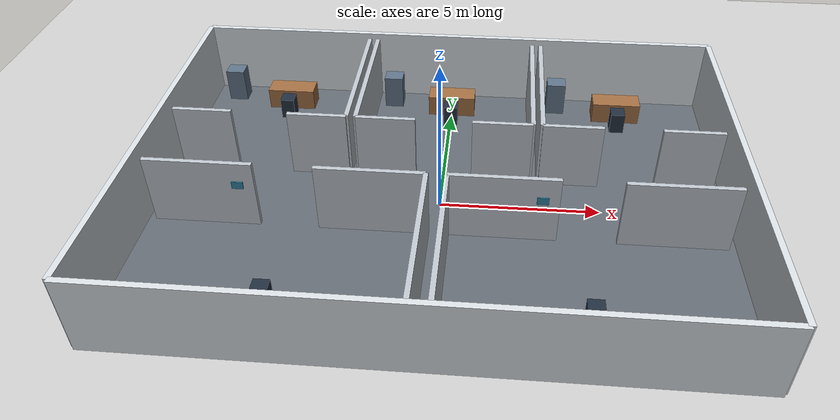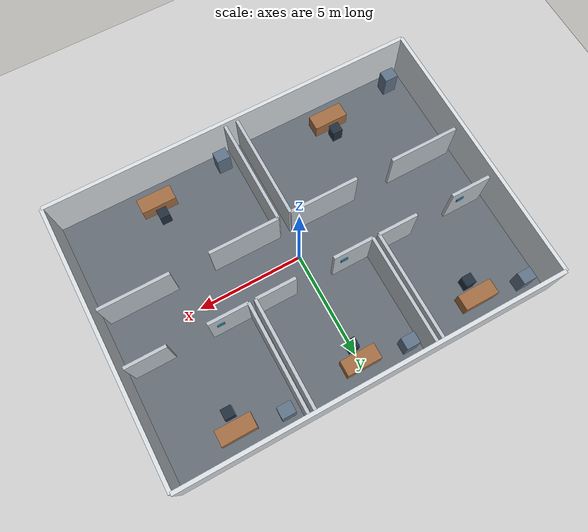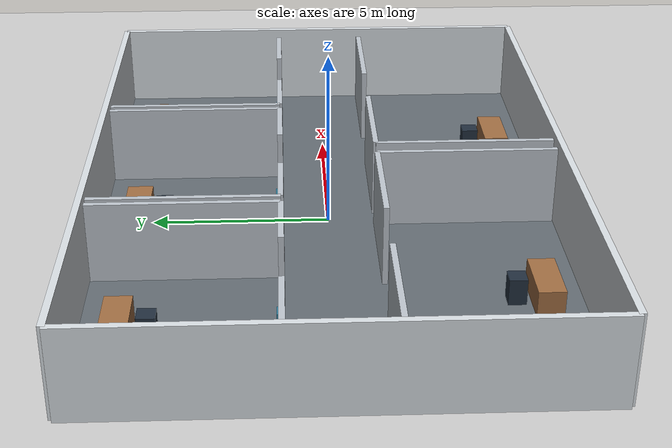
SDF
<?xml version='1.0' encoding='utf-8'?>
<sdf version="1.6">
  <world name="robotics_office_rooms">
    <include>
      <uri>model://sun</uri>
    </include>
    <include>
      <uri>model://ground_plane</uri>
    </include>
    <scene>
      <ambient>0.7 0.7 0.7 1</ambient>
      <background>0.77 0.81 0.88 1</background>
      <shadows>false</shadows>
    </scene>
    <physics name="default_physics" type="ode">
      <max_step_size>0.001</max_step_size>
      <real_time_update_rate>1000</real_time_update_rate>
    </physics>
    <model name="charcoal_gray_floor">
      <static>true</static>
      <pose>0 0 0.015 0 0 0</pose>
      <link name="link">
        <collision name="collision">
          <geometry>
            <box>
              <size>18 13 0.03</size>
            </box>
          </geometry>
        </collision>
        <visual name="visual">
          <geometry>
            <box>
              <size>18 13 0.03</size>
            </box>
          </geometry>
          <material>
            <ambient>0.39 0.42 0.45 1</ambient>
            <diffuse>0.39 0.42 0.45 1</diffuse>
          </material>
        </visual>
      </link>
    </model>
    <model name="outer_north">
      <static>true</static>
      <pose>0 6.5 1.25 0 0 0</pose>
      <link name="link">
        <collision name="collision">
          <geometry>
            <box>
              <size>18 0.18 2.5</size>
            </box>
          </geometry>
        </collision>
        <visual name="visual">
          <geometry>
            <box>
              <size>18 0.18 2.5</size>
            </box>
          </geometry>
          <material>
            <ambient>0.85 0.87 0.89 1</ambient>
            <diffuse>0.85 0.87 0.89 1</diffuse>
          </material>
        </visual>
      </link>
    </model>
    <model name="outer_south">
      <static>true</static>
      <pose>0 -6.5 1.25 0 0 0</pose>
      <link name="link">
        <collision name="collision">
          <geometry>
            <box>
              <size>18 0.18 2.5</size>
            </box>
          </geometry>
        </collision>
        <visual name="visual">
          <geometry>
            <box>
              <size>18 0.18 2.5</size>
            </box>
          </geometry>
          <material>
            <ambient>0.85 0.87 0.89 1</ambient>
            <diffuse>0.85 0.87 0.89 1</diffuse>
          </material>
        </visual>
      </link>
    </model>
    <model name="outer_west">
      <static>true</static>
      <pose>-9 0 1.25 0 0 0</pose>
      <link name="link">
        <collision name="collision">
          <geometry>
            <box>
              <size>0.18 13 2.5</size>
            </box>
          </geometry>
        </collision>
        <visual name="visual">
          <geometry>
            <box>
              <size>0.18 13 2.5</size>
            </box>
          </geometry>
          <material>
            <ambient>0.85 0.87 0.89 1</ambient>
            <diffuse>0.85 0.87 0.89 1</diffuse>
          </material>
        </visual>
      </link>
    </model>
    <model name="outer_east">
      <static>true</static>
      <pose>9 0 1.25 0 0 0</pose>
      <link name="link">
        <collision name="collision">
          <geometry>
            <box>
              <size>0.18 13 2.5</size>
            </box>
          </geometry>
        </collision>
        <visual name="visual">
          <geometry>
            <box>
              <size>0.18 13 2.5</size>
            </box>
          </geometry>
          <material>
            <ambient>0.85 0.87 0.89 1</ambient>
            <diffuse>0.85 0.87 0.89 1</diffuse>
          </material>
        </visual>
      </link>
    </model>
    <model name="room1_front_L">
      <static>true</static>
      <pose>-7.75 1.35 1.15 0 0 0</pose>
      <link name="link">
        <collision name="collision">
          <geometry>
            <box>
              <size>1.8999999999999995 0.15 2.3</size>
            </box>
          </geometry>
        </collision>
        <visual name="visual">
          <geometry>
            <box>
              <size>1.8999999999999995 0.15 2.3</size>
            </box>
          </geometry>
          <material>
            <ambient>0.74 0.77 0.80 1</ambient>
            <diffuse>0.74 0.77 0.80 1</diffuse>
          </material>
        </visual>
      </link>
    </model>
    <model name="room1_front_R">
      <static>true</static>
      <pose>-4.05 1.35 1.15 0 0 0</pose>
      <link name="link">
        <collision name="collision">
          <geometry>
            <box>
              <size>1.899999999999999 0.15 2.3</size>
            </box>
          </geometry>
        </collision>
        <visual name="visual">
          <geometry>
            <box>
              <size>1.899999999999999 0.15 2.3</size>
            </box>
          </geometry>
          <material>
            <ambient>0.74 0.77 0.80 1</ambient>
            <diffuse>0.74 0.77 0.80 1</diffuse>
          </material>
        </visual>
      </link>
    </model>
    <model name="room1_right">
      <static>true</static>
      <pose>-3.1 3.875 1.15 0 0 0</pose>
      <link name="link">
        <collision name="collision">
          <geometry>
            <box>
              <size>0.15 5.050000000000001 2.3</size>
            </box>
          </geometry>
        </collision>
        <visual name="visual">
          <geometry>
            <box>
              <size>0.15 5.050000000000001 2.3</size>
            </box>
          </geometry>
          <material>
            <ambient>0.74 0.77 0.80 1</ambient>
            <diffuse>0.74 0.77 0.80 1</diffuse>
          </material>
        </visual>
      </link>
    </model>
    <model name="room1_desk">
      <static>true</static>
      <pose>-5.8999999999999995 5.4 0.38 0 0 0</pose>
      <link name="link">
        <collision name="collision">
          <geometry>
            <box>
              <size>1.65 0.72 0.76</size>
            </box>
          </geometry>
        </collision>
        <visual name="visual">
          <geometry>
            <box>
              <size>1.65 0.72 0.76</size>
            </box>
          </geometry>
          <material>
            <ambient>0.63 0.43 0.26 1</ambient>
            <diffuse>0.63 0.43 0.26 1</diffuse>
          </material>
        </visual>
      </link>
    </model>
    <model name="room1_chair">
      <static>true</static>
      <pose>-5.8999999999999995 4.65 0.38 0 0 0</pose>
      <link name="link">
        <collision name="collision">
          <geometry>
            <box>
              <size>0.48 0.48 0.76</size>
            </box>
          </geometry>
        </collision>
        <visual name="visual">
          <geometry>
            <box>
              <size>0.48 0.48 0.76</size>
            </box>
          </geometry>
          <material>
            <ambient>0.13 0.18 0.24 1</ambient>
            <diffuse>0.13 0.18 0.24 1</diffuse>
          </material>
        </visual>
      </link>
    </model>
    <model name="room1_cabinet">
      <static>true</static>
      <pose>-8.049999999999999 5.75 0.6 0 0 0</pose>
      <link name="link">
        <collision name="collision">
          <geometry>
            <box>
              <size>0.65 0.55 1.2</size>
            </box>
          </geometry>
        </collision>
        <visual name="visual">
          <geometry>
            <box>
              <size>0.65 0.55 1.2</size>
            </box>
          </geometry>
          <material>
            <ambient>0.37 0.45 0.53 1</ambient>
            <diffuse>0.37 0.45 0.53 1</diffuse>
          </material>
        </visual>
      </link>
    </model>
    <model name="room1_sign">
      <static>true</static>
      <pose>-7.299999999999999 1.4500000000000002 1.55 0 0 0</pose>
      <link name="link">
        <collision name="collision">
          <geometry>
            <box>
              <size>0.35 0.04 0.25</size>
            </box>
          </geometry>
        </collision>
        <visual name="visual">
          <geometry>
            <box>
              <size>0.35 0.04 0.25</size>
            </box>
          </geometry>
          <material>
            <ambient>0.18 0.50 0.62 1</ambient>
            <diffuse>0.18 0.50 0.62 1</diffuse>
          </material>
        </visual>
      </link>
    </model>
    <model name="room2_front_L">
      <static>true</static>
      <pose>-1.8499999999999999 1.35 1.15 0 0 0</pose>
      <link name="link">
        <collision name="collision">
          <geometry>
            <box>
              <size>1.9 0.15 2.3</size>
            </box>
          </geometry>
        </collision>
        <visual name="visual">
          <geometry>
            <box>
              <size>1.9 0.15 2.3</size>
            </box>
          </geometry>
          <material>
            <ambient>0.74 0.77 0.80 1</ambient>
            <diffuse>0.74 0.77 0.80 1</diffuse>
          </material>
        </visual>
      </link>
    </model>
    <model name="room2_front_R">
      <static>true</static>
      <pose>1.8499999999999999 1.35 1.15 0 0 0</pose>
      <link name="link">
        <collision name="collision">
          <geometry>
            <box>
              <size>1.9 0.15 2.3</size>
            </box>
          </geometry>
        </collision>
        <visual name="visual">
          <geometry>
            <box>
              <size>1.9 0.15 2.3</size>
            </box>
          </geometry>
          <material>
            <ambient>0.74 0.77 0.80 1</ambient>
            <diffuse>0.74 0.77 0.80 1</diffuse>
          </material>
        </visual>
      </link>
    </model>
    <model name="room2_left">
      <static>true</static>
      <pose>-2.8 3.875 1.15 0 0 0</pose>
      <link name="link">
        <collision name="collision">
          <geometry>
            <box>
              <size>0.15 5.050000000000001 2.3</size>
            </box>
          </geometry>
        </collision>
        <visual name="visual">
          <geometry>
            <box>
              <size>0.15 5.050000000000001 2.3</size>
            </box>
          </geometry>
          <material>
            <ambient>0.74 0.77 0.80 1</ambient>
            <diffuse>0.74 0.77 0.80 1</diffuse>
          </material>
        </visual>
      </link>
    </model>
    <model name="room2_right">
      <static>true</static>
      <pose>2.8 3.875 1.15 0 0 0</pose>
      <link name="link">
        <collision name="collision">
          <geometry>
            <box>
              <size>0.15 5.050000000000001 2.3</size>
            </box>
          </geometry>
        </collision>
        <visual name="visual">
          <geometry>
            <box>
              <size>0.15 5.050000000000001 2.3</size>
            </box>
          </geometry>
          <material>
            <ambient>0.74 0.77 0.80 1</ambient>
            <diffuse>0.74 0.77 0.80 1</diffuse>
          </material>
        </visual>
      </link>
    </model>
    <model name="room2_desk">
      <static>true</static>
      <pose>0.0 5.4 0.38 0 0 0</pose>
      <link name="link">
        <collision name="collision">
          <geometry>
            <box>
              <size>1.65 0.72 0.76</size>
            </box>
          </geometry>
        </collision>
        <visual name="visual">
          <geometry>
            <box>
              <size>1.65 0.72 0.76</size>
            </box>
          </geometry>
          <material>
            <ambient>0.63 0.43 0.26 1</ambient>
            <diffuse>0.63 0.43 0.26 1</diffuse>
          </material>
        </visual>
      </link>
    </model>
    <model name="room2_chair">
      <static>true</static>
      <pose>0.0 4.65 0.38 0 0 0</pose>
      <link name="link">
        <collision name="collision">
          <geometry>
            <box>
              <size>0.48 0.48 0.76</size>
            </box>
          </geometry>
        </collision>
        <visual name="visual">
          <geometry>
            <box>
              <size>0.48 0.48 0.76</size>
            </box>
          </geometry>
          <material>
            <ambient>0.13 0.18 0.24 1</ambient>
            <diffuse>0.13 0.18 0.24 1</diffuse>
          </material>
        </visual>
      </link>
    </model>
    <model name="room2_cabinet">
      <static>true</static>
      <pose>-2.15 5.75 0.6 0 0 0</pose>
      <link name="link">
        <collision name="collision">
          <geometry>
            <box>
              <size>0.65 0.55 1.2</size>
            </box>
          </geometry>
        </collision>
        <visual name="visual">
          <geometry>
            <box>
              <size>0.65 0.55 1.2</size>
            </box>
          </geometry>
          <material>
            <ambient>0.37 0.45 0.53 1</ambient>
            <diffuse>0.37 0.45 0.53 1</diffuse>
          </material>
        </visual>
      </link>
    </model>
    <model name="room2_sign">
      <static>true</static>
      <pose>-1.4 1.4500000000000002 1.55 0 0 0</pose>
      <link name="link">
        <collision name="collision">
          <geometry>
            <box>
              <size>0.35 0.04 0.25</size>
            </box>
          </geometry>
        </collision>
        <visual name="visual">
          <geometry>
            <box>
              <size>0.35 0.04 0.25</size>
            </box>
          </geometry>
          <material>
            <ambient>0.18 0.50 0.62 1</ambient>
            <diffuse>0.18 0.50 0.62 1</diffuse>
          </material>
        </visual>
      </link>
    </model>
    <model name="room3_front_L">
      <static>true</static>
      <pose>4.05 1.35 1.15 0 0 0</pose>
      <link name="link">
        <collision name="collision">
          <geometry>
            <box>
              <size>1.899999999999999 0.15 2.3</size>
            </box>
          </geometry>
        </collision>
        <visual name="visual">
          <geometry>
            <box>
              <size>1.899999999999999 0.15 2.3</size>
            </box>
          </geometry>
          <material>
            <ambient>0.74 0.77 0.80 1</ambient>
            <diffuse>0.74 0.77 0.80 1</diffuse>
          </material>
        </visual>
      </link>
    </model>
    <model name="room3_front_R">
      <static>true</static>
      <pose>7.75 1.35 1.15 0 0 0</pose>
      <link name="link">
        <collision name="collision">
          <geometry>
            <box>
              <size>1.8999999999999995 0.15 2.3</size>
            </box>
          </geometry>
        </collision>
        <visual name="visual">
          <geometry>
            <box>
              <size>1.8999999999999995 0.15 2.3</size>
            </box>
          </geometry>
          <material>
            <ambient>0.74 0.77 0.80 1</ambient>
            <diffuse>0.74 0.77 0.80 1</diffuse>
          </material>
        </visual>
      </link>
    </model>
    <model name="room3_left">
      <static>true</static>
      <pose>3.1 3.875 1.15 0 0 0</pose>
      <link name="link">
        <collision name="collision">
          <geometry>
            <box>
              <size>0.15 5.050000000000001 2.3</size>
            </box>
          </geometry>
        </collision>
        <visual name="visual">
          <geometry>
            <box>
              <size>0.15 5.050000000000001 2.3</size>
            </box>
          </geometry>
          <material>
            <ambient>0.74 0.77 0.80 1</ambient>
            <diffuse>0.74 0.77 0.80 1</diffuse>
          </material>
        </visual>
      </link>
    </model>
    <model name="room3_desk">
      <static>true</static>
      <pose>5.8999999999999995 5.4 0.38 0 0 0</pose>
      <link name="link">
        <collision name="collision">
          <geometry>
            <box>
              <size>1.65 0.72 0.76</size>
            </box>
          </geometry>
        </collision>
        <visual name="visual">
          <geometry>
            <box>
              <size>1.65 0.72 0.76</size>
            </box>
          </geometry>
          <material>
            <ambient>0.63 0.43 0.26 1</ambient>
            <diffuse>0.63 0.43 0.26 1</diffuse>
          </material>
        </visual>
      </link>
    </model>
    <model name="room3_chair">
      <static>true</static>
      <pose>5.8999999999999995 4.65 0.38 0 0 0</pose>
      <link name="link">
        <collision name="collision">
          <geometry>
            <box>
              <size>0.48 0.48 0.76</size>
            </box>
          </geometry>
        </collision>
        <visual name="visual">
          <geometry>
            <box>
              <size>0.48 0.48 0.76</size>
            </box>
          </geometry>
          <material>
            <ambient>0.13 0.18 0.24 1</ambient>
            <diffuse>0.13 0.18 0.24 1</diffuse>
          </material>
        </visual>
      </link>
    </model>
    <model name="room3_cabinet">
      <static>true</static>
      <pose>3.75 5.75 0.6 0 0 0</pose>
      <link name="link">
        <collision name="collision">
          <geometry>
            <box>
              <size>0.65 0.55 1.2</size>
            </box>
          </geometry>
        </collision>
        <visual name="visual">
          <geometry>
            <box>
              <size>0.65 0.55 1.2</size>
            </box>
          </geometry>
          <material>
            <ambient>0.37 0.45 0.53 1</ambient>
            <diffuse>0.37 0.45 0.53 1</diffuse>
          </material>
        </visual>
      </link>
    </model>
    <model name="room3_sign">
      <static>true</static>
      <pose>4.5 1.4500000000000002 1.55 0 0 0</pose>
      <link name="link">
        <collision name="collision">
          <geometry>
            <box>
              <size>0.35 0.04 0.25</size>
            </box>
          </geometry>
        </collision>
        <visual name="visual">
          <geometry>
            <box>
              <size>0.35 0.04 0.25</size>
            </box>
          </geometry>
          <material>
            <ambient>0.18 0.50 0.62 1</ambient>
            <diffuse>0.18 0.50 0.62 1</diffuse>
          </material>
        </visual>
      </link>
    </model>
    <model name="room4_front_L">
      <static>true</static>
      <pose>-7.05 -1.35 1.15 0 0 0</pose>
      <link name="link">
        <collision name="collision">
          <geometry>
            <box>
              <size>3.299999999999999 0.15 2.3</size>
            </box>
          </geometry>
        </collision>
        <visual name="visual">
          <geometry>
            <box>
              <size>3.299999999999999 0.15 2.3</size>
            </box>
          </geometry>
          <material>
            <ambient>0.74 0.77 0.80 1</ambient>
            <diffuse>0.74 0.77 0.80 1</diffuse>
          </material>
        </visual>
      </link>
    </model>
    <model name="room4_front_R">
      <static>true</static>
      <pose>-1.95 -1.35 1.15 0 0 0</pose>
      <link name="link">
        <collision name="collision">
          <geometry>
            <box>
              <size>3.3000000000000003 0.15 2.3</size>
            </box>
          </geometry>
        </collision>
        <visual name="visual">
          <geometry>
            <box>
              <size>3.3000000000000003 0.15 2.3</size>
            </box>
          </geometry>
          <material>
            <ambient>0.74 0.77 0.80 1</ambient>
            <diffuse>0.74 0.77 0.80 1</diffuse>
          </material>
        </visual>
      </link>
    </model>
    <model name="room4_right">
      <static>true</static>
      <pose>-0.3 -3.875 1.15 0 0 0</pose>
      <link name="link">
        <collision name="collision">
          <geometry>
            <box>
              <size>0.15 5.050000000000001 2.3</size>
            </box>
          </geometry>
        </collision>
        <visual name="visual">
          <geometry>
            <box>
              <size>0.15 5.050000000000001 2.3</size>
            </box>
          </geometry>
          <material>
            <ambient>0.74 0.77 0.80 1</ambient>
            <diffuse>0.74 0.77 0.80 1</diffuse>
          </material>
        </visual>
      </link>
    </model>
    <model name="room4_desk">
      <static>true</static>
      <pose>-4.5 -5.4 0.38 0 0 0</pose>
      <link name="link">
        <collision name="collision">
          <geometry>
            <box>
              <size>1.65 0.72 0.76</size>
            </box>
          </geometry>
        </collision>
        <visual name="visual">
          <geometry>
            <box>
              <size>1.65 0.72 0.76</size>
            </box>
          </geometry>
          <material>
            <ambient>0.63 0.43 0.26 1</ambient>
            <diffuse>0.63 0.43 0.26 1</diffuse>
          </material>
        </visual>
      </link>
    </model>
    <model name="room4_chair">
      <static>true</static>
      <pose>-4.5 -4.65 0.38 0 0 0</pose>
      <link name="link">
        <collision name="collision">
          <geometry>
            <box>
              <size>0.48 0.48 0.76</size>
            </box>
          </geometry>
        </collision>
        <visual name="visual">
          <geometry>
            <box>
              <size>0.48 0.48 0.76</size>
            </box>
          </geometry>
          <material>
            <ambient>0.13 0.18 0.24 1</ambient>
            <diffuse>0.13 0.18 0.24 1</diffuse>
          </material>
        </visual>
      </link>
    </model>
    <model name="room4_cabinet">
      <static>true</static>
      <pose>-8.049999999999999 -5.75 0.6 0 0 0</pose>
      <link name="link">
        <collision name="collision">
          <geometry>
            <box>
              <size>0.65 0.55 1.2</size>
            </box>
          </geometry>
        </collision>
        <visual name="visual">
          <geometry>
            <box>
              <size>0.65 0.55 1.2</size>
            </box>
          </geometry>
          <material>
            <ambient>0.37 0.45 0.53 1</ambient>
            <diffuse>0.37 0.45 0.53 1</diffuse>
          </material>
        </visual>
      </link>
    </model>
    <model name="room4_sign">
      <static>true</static>
      <pose>-5.9 -1.4500000000000002 1.55 0 0 0</pose>
      <link name="link">
        <collision name="collision">
          <geometry>
            <box>
              <size>0.35 0.04 0.25</size>
            </box>
          </geometry>
        </collision>
        <visual name="visual">
          <geometry>
            <box>
              <size>0.35 0.04 0.25</size>
            </box>
          </geometry>
          <material>
            <ambient>0.18 0.50 0.62 1</ambient>
            <diffuse>0.18 0.50 0.62 1</diffuse>
          </material>
        </visual>
      </link>
    </model>
    <model name="room5_front_L">
      <static>true</static>
      <pose>1.95 -1.35 1.15 0 0 0</pose>
      <link name="link">
        <collision name="collision">
          <geometry>
            <box>
              <size>3.3000000000000003 0.15 2.3</size>
            </box>
          </geometry>
        </collision>
        <visual name="visual">
          <geometry>
            <box>
              <size>3.3000000000000003 0.15 2.3</size>
            </box>
          </geometry>
          <material>
            <ambient>0.74 0.77 0.80 1</ambient>
            <diffuse>0.74 0.77 0.80 1</diffuse>
          </material>
        </visual>
      </link>
    </model>
    <model name="room5_front_R">
      <static>true</static>
      <pose>7.05 -1.35 1.15 0 0 0</pose>
      <link name="link">
        <collision name="collision">
          <geometry>
            <box>
              <size>3.299999999999999 0.15 2.3</size>
            </box>
          </geometry>
        </collision>
        <visual name="visual">
          <geometry>
            <box>
              <size>3.299999999999999 0.15 2.3</size>
            </box>
          </geometry>
          <material>
            <ambient>0.74 0.77 0.80 1</ambient>
            <diffuse>0.74 0.77 0.80 1</diffuse>
          </material>
        </visual>
      </link>
    </model>
    <model name="room5_left">
      <static>true</static>
      <pose>0.3 -3.875 1.15 0 0 0</pose>
      <link name="link">
        <collision name="collision">
          <geometry>
            <box>
              <size>0.15 5.050000000000001 2.3</size>
            </box>
          </geometry>
        </collision>
        <visual name="visual">
          <geometry>
            <box>
              <size>0.15 5.050000000000001 2.3</size>
            </box>
          </geometry>
          <material>
            <ambient>0.74 0.77 0.80 1</ambient>
            <diffuse>0.74 0.77 0.80 1</diffuse>
          </material>
        </visual>
      </link>
    </model>
    <model name="room5_desk">
      <static>true</static>
      <pose>4.5 -5.4 0.38 0 0 0</pose>
      <link name="link">
        <collision name="collision">
          <geometry>
            <box>
              <size>1.65 0.72 0.76</size>
            </box>
          </geometry>
        </collision>
        <visual name="visual">
          <geometry>
            <box>
              <size>1.65 0.72 0.76</size>
            </box>
          </geometry>
          <material>
            <ambient>0.63 0.43 0.26 1</ambient>
            <diffuse>0.63 0.43 0.26 1</diffuse>
          </material>
        </visual>
      </link>
    </model>
    <model name="room5_chair">
      <static>true</static>
      <pose>4.5 -4.65 0.38 0 0 0</pose>
      <link name="link">
        <collision name="collision">
          <geometry>
            <box>
              <size>0.48 0.48 0.76</size>
            </box>
          </geometry>
        </collision>
        <visual name="visual">
          <geometry>
            <box>
              <size>0.48 0.48 0.76</size>
            </box>
          </geometry>
          <material>
            <ambient>0.13 0.18 0.24 1</ambient>
            <diffuse>0.13 0.18 0.24 1</diffuse>
          </material>
        </visual>
      </link>
    </model>
    <model name="room5_cabinet">
      <static>true</static>
      <pose>0.95 -5.75 0.6 0 0 0</pose>
      <link name="link">
        <collision name="collision">
          <geometry>
            <box>
              <size>0.65 0.55 1.2</size>
            </box>
          </geometry>
        </collision>
        <visual name="visual">
          <geometry>
            <box>
              <size>0.65 0.55 1.2</size>
            </box>
          </geometry>
          <material>
            <ambient>0.37 0.45 0.53 1</ambient>
            <diffuse>0.37 0.45 0.53 1</diffuse>
          </material>
        </visual>
      </link>
    </model>
    <model name="room5_sign">
      <static>true</static>
      <pose>3.1 -1.4500000000000002 1.55 0 0 0</pose>
      <link name="link">
        <collision name="collision">
          <geometry>
            <box>
              <size>0.35 0.04 0.25</size>
            </box>
          </geometry>
        </collision>
        <visual name="visual">
          <geometry>
            <box>
              <size>0.35 0.04 0.25</size>
            </box>
          </geometry>
          <material>
            <ambient>0.18 0.50 0.62 1</ambient>
            <diffuse>0.18 0.50 0.62 1</diffuse>
          </material>
        </visual>
      </link>
    </model>
  </world>
</sdf>
